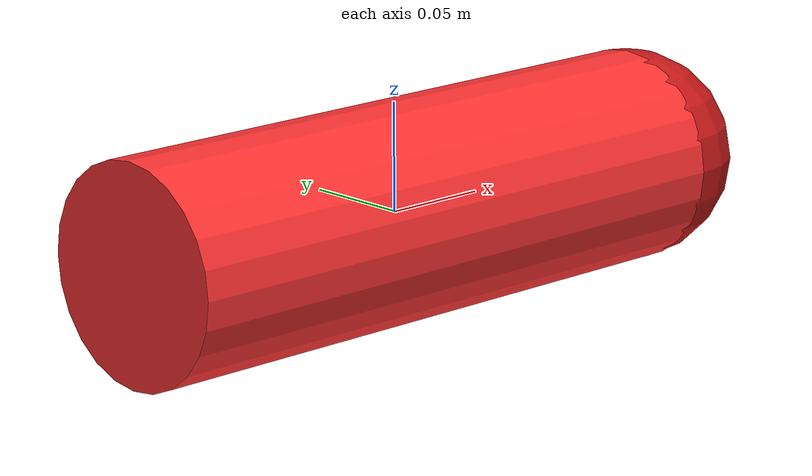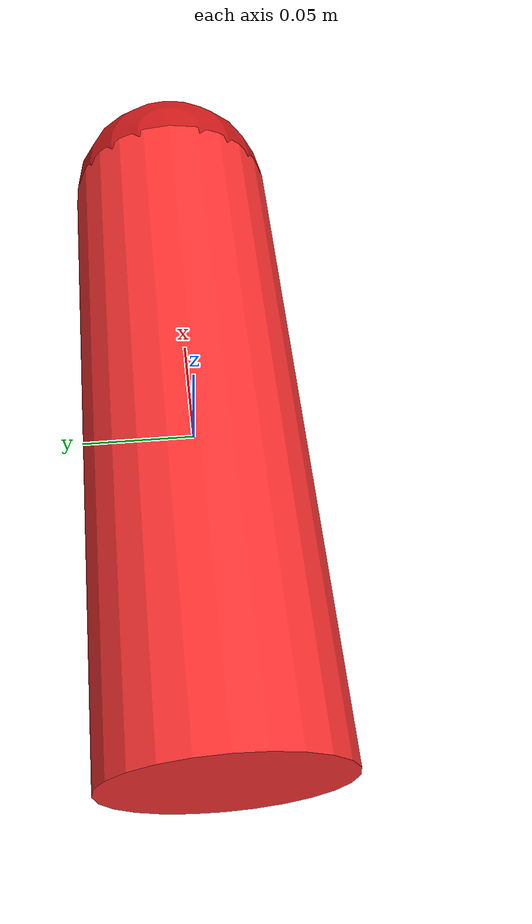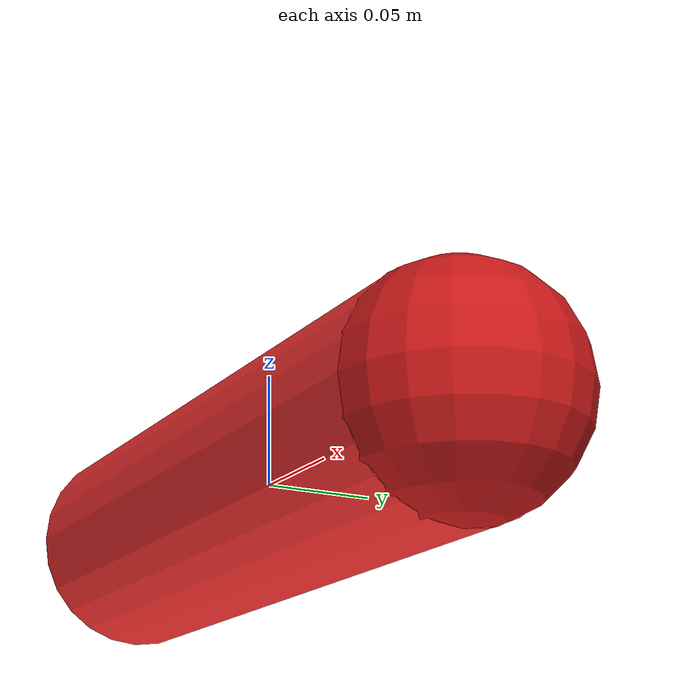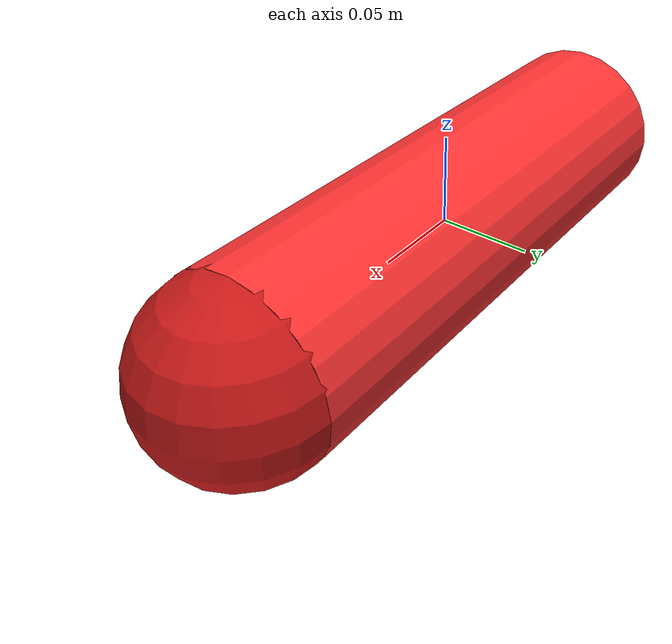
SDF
<?xml version="1.0"?>
<sdf version="1.6">
  <model name="torpedo_projectile">
    <static>false</static>
    <link name="body">
      <pose>0 0 0 0 0 0</pose>

      <inertial>
        <mass>1.0</mass>
        <inertia>
          <ixx>0.01</ixx>
          <iyy>0.01</iyy>
          <izz>0.002</izz>
          <ixy>0</ixy>
          <ixz>0</ixz>
          <iyz>0</iyz>
        </inertia>
      </inertial>

      <!-- Main body (cylinder along X-axis) -->
      <visual name="body_visual">
        <geometry>
          <cylinder>
            <radius>0.05</radius>
            <length>0.3</length>
          </cylinder>
        </geometry>
        <material>
          <ambient>1.0 0.2 0.2 1.0</ambient>
          <diffuse>1.0 0.2 0.2 1.0</diffuse>
          <specular>0.5 0.5 0.5 1.0</specular>
        </material>
        <!-- Rotate to align along X-axis (cylinder default is Z-axis) -->
        <pose>0 0 0 0 1.5708 0</pose>
      </visual>

      <!-- Nose cone -->
      <visual name="nose_visual">
        <geometry>
          <sphere>
            <radius>0.05</radius>
          </sphere>
        </geometry>
        <material>
          <ambient>0.8 0.1 0.1 1.0</ambient>
          <diffuse>0.8 0.1 0.1 1.0</diffuse>
          <specular>0.5 0.5 0.5 1.0</specular>
        </material>
        <pose>0.15 0 0 0 0 0</pose>
      </visual>

      <!-- Simple sphere collision to avoid ODE issues -->
      <collision name="collision">
        <geometry>
          <sphere>
            <radius>0.08</radius>
          </sphere>
        </geometry>
      </collision>

    </link>

    <!-- Buoyancy plugin for neutral buoyancy -->
    <plugin filename="libsimple_buoyancy.so" name="gz::sim::systems::SimpleBuoyancy">
      <link_name>body</link_name>
      <water_level>0.0</water_level>
      <fluid_density>1000.0</fluid_density>
      <!-- Volume = mass/density for neutral buoyancy
           mass = 1.0 kg, so volume = 1.0/1000.0 = 0.001 m^3 -->
      <volume>0.001</volume>
    </plugin>

  </model>
</sdf>
